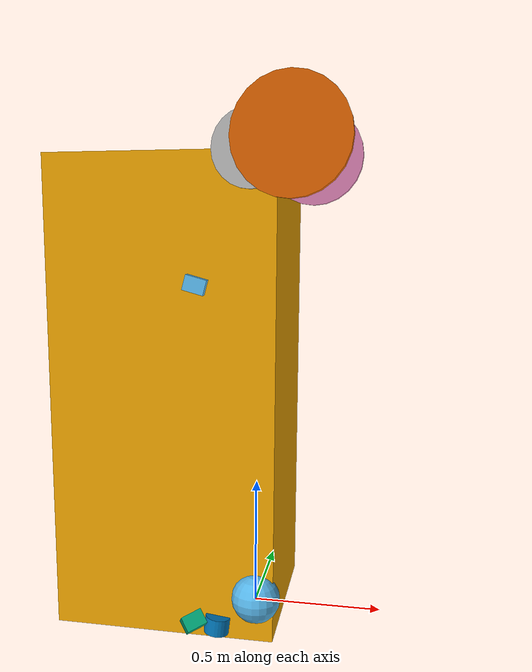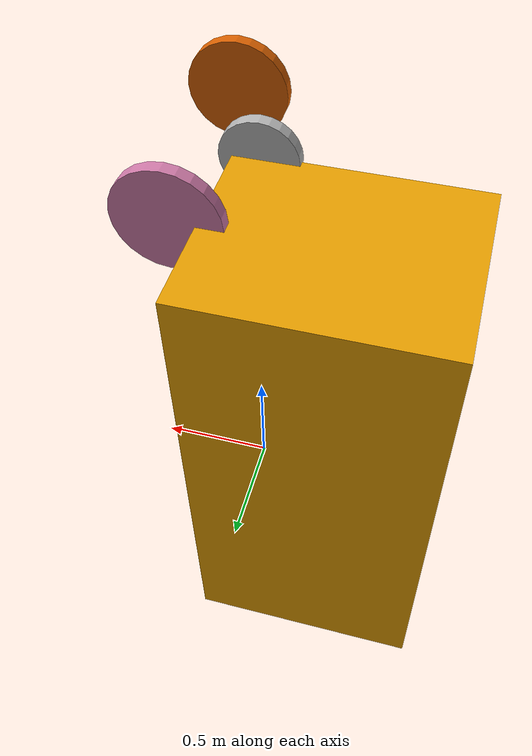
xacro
<?xml version="1.0"?>
<robot xmlns:xacro="http://www.ros.org/wiki/xacro" name="navvis_m6">
<xacro:include filename="$(find package_name)/path_to_xacro/urdf.xacro" />
<link name="base_link">
</link>
<joint name="base_link_base_joint" type="fixed">
<parent link="base_link" />
<child link="base" />
<origin xyz="0.07 0 1.792" rpy="0.0 ${pi} 0.0" />
</joint>
<joint name="base_link_imu_joint" type="fixed">
<parent link="base_link" />
<child link="imu" />
<origin xyz="0.0 0.0 0.0" rpy="3.1405788 0.0034281 3.1382064" />
</joint>
<link name="imu">
<visual>
<geometry>
<sphere radius="0.1" />
</geometry>
</visual>
<collision>
<geometry>
<sphere radius="0.1" />
</geometry>
</collision>
</link>
</robot>

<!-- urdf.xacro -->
<robot xmlns:xacro="http://www.ros.org/wiki/xacro" name="robot">
 <link name="base">
	<visual>
		<origin xyz=".47 .39 .99" rpy="0 0 0"/>
		<geometry>
		<box size= ".94 .78 1.98"/>
		</geometry>
   	</visual>
	<collision>
	<origin xyz=".47 .39 .99" rpy="0 0 0"/>
	<geometry>
	<cylinder radius="1" length="0.5"/>
	</geometry>
	</collision>
</link>

<link name="laser_vert_bottom">
	<visual>
		<geometry>
		<box size= ".062 .062 0.087"/>
		</geometry>
	</visual>
	<collision>
	<geometry>
	<cylinder radius="1" length="0.5"/>
	</geometry>
	</collision>
</link>

<link name="laser_vert_top_right">
	<visual>
		<geometry>
		<box size= ".062 .062 0.087"/>
		</geometry>
	</visual>
	<collision>
	<geometry>
	<cylinder radius="1" length="0.5"/>
	</geometry>
	</collision>
</link>

<link name="laser_vert_top_left">
	<visual>
		<geometry>
		<box size= ".062 .062 0.087"/>
		</geometry>
	</visual>
	<collision>
	<geometry>
	<cylinder radius="1" length="0.5"/>
	</geometry>
	</collision>
</link>

<link name="laser_horiz">
	<visual>
		<geometry>
		<cylinder length=".072" radius=".052"/>
		</geometry>
	</visual>
	<collision>
	<geometry>
	<cylinder radius="1" length="0.5"/>
	</geometry>
	</collision>
</link>

<xacro:macro name="xacro_right" params= "suffix reflect">
<link name="wheel_right">
	<visual>
		<geometry>
		<cylinder length="0.05" radius=".2"/>
		</geometry>
	</visual>
	<collision>
	<geometry>
	<cylinder radius="1" length="0.5"/>
	</geometry>
	</collision>
</link>
</xacro:macro>
<xacro:xacro_right suffix="right" reflect="-1"/>

<xacro:macro name="xacro_left" params= "suffix reflect">
<link name="wheel_left">
	<visual>
		<geometry>
		<cylinder length="0.05" radius=".2"/>
		</geometry>
	</visual>
	<collision>
	<origin xyz="-0.10 0.4 0" rpy="-1.57 0 0"/>
	<geometry>
	<cylinder radius="1" length="0.5"/>
	</geometry>
	</collision>
</link>

</xacro:macro>
<xacro:xacro_left suffix="left" reflect="1"/>
<link name="wheel_center">
	<visual>
		<geometry>
		<cylinder length="0.05" radius=".15"/>
		</geometry>
	</visual>
	<collision>
	<geometry>
	<cylinder radius="1" length="0.5"/>
	</geometry>
	</collision>
</link>

<joint name="base_vert_bottom_joint" type="fixed">
	<origin xyz="0.3158 -0.0021 0.5100" rpy="3.1355 -1.3045 0.0025"/>
	<parent link="base"/>
	<child link="laser_vert_bottom"/>
</joint>

<joint name="base_vert_top_right_joint" type="fixed">
	<origin xyz="0.2978 -0.1450 1.8451" rpy="-1.1760 0.6313 -1.9377"/>
	<parent link="base"/>
	<child link="laser_vert_top_right"/>
</joint>

<joint name="base_vert_top_left_joint" type="fixed">
	<origin xyz="0.2997 0.1531 1.8443" rpy="1.1780 0.6198 1.9560"/>
	<parent link="base"/>
	<child link="laser_vert_top_left"/>
</joint>

<joint name="base_horiz_joint" type="fixed">
	<origin xyz="0.2325 .0001 1.9201" rpy="-0.0012 0.1146 -0.0015"/>
	<parent link="base"/>
	<child link="laser_horiz"/>
</joint>

<xacro:macro name="xacro_name" params= "suffix reflect">
<joint name="base_wheel_right_joint" type="continuous">
	<origin xyz="-0.10 ${reflect * 0.4} 0" rpy="-1.57 0 0"/>
	<parent link="base"/>
	<child link="wheel_right"/>
</joint>
</xacro:macro>
<xacro:xacro_name suffix="right" reflect="-1"/>

<xacro:macro name="xacro_left2" params= "suffix reflect">
<joint name="base_wheel_left_joint" type="continuous">
	<origin xyz="-0.10 0.4 0" rpy="-1.57 0 0"/>
	<parent link="base"/>
	<child link="wheel_left"/>
</joint>
</xacro:macro>
<xacro:xacro_left2 suffix="left" reflect="1"/>

<joint name="base_wheel_center_joint" type="continuous">
	<origin xyz="0.10 0 0" rpy="-1.57 0 0"/>
	<parent link="base"/>
	<child link="wheel_center"/>
</joint>

</robot>
